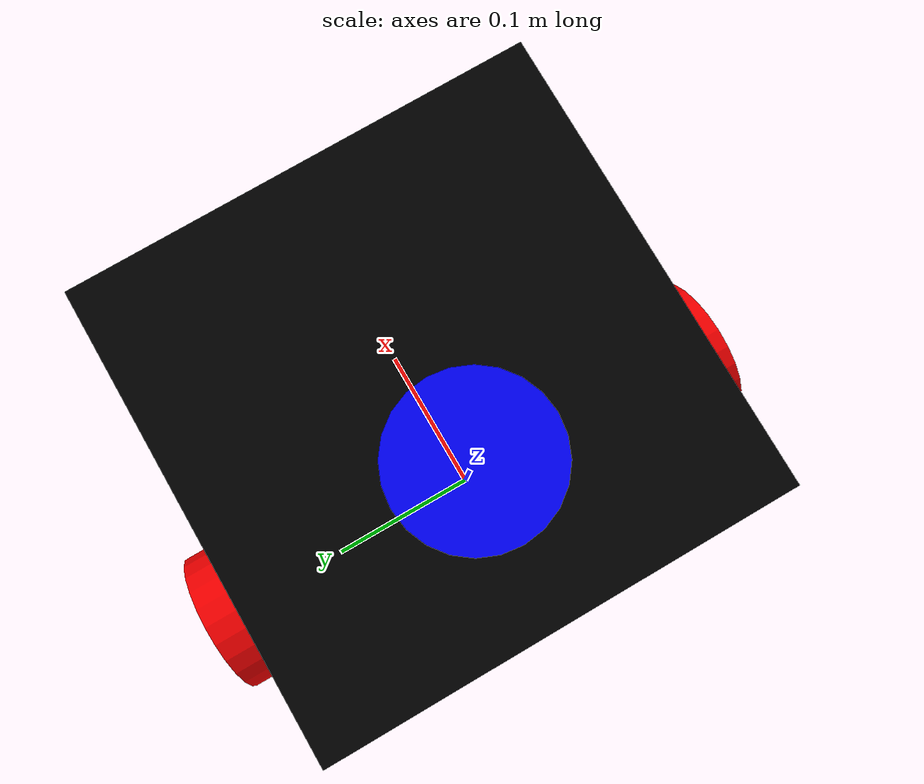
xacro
<?xml version="1.0"?>
<robot xmlns:xacro="http://www.ros.org/wiki/xacro"  name="robot">

    <xacro:include filename="robot_core.xacro"/>

    <xacro:include filename="gazebo_control.xacro"/>

    <xacro:include filename="lidar.xacro"/>

    <xacro:include filename="depth_camera.xacro"/>

</robot>

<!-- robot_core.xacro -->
<robot xmlns:xacro="http://www.ros.org/wiki/xacro">

    <xacro:include filename="inertial_macros.xacro"/>

    <material name="white">
        <color rgba="1 1 1 1" />
    </material>

    <material name="red">
        <color rgba="1 0 0 1" />
    </material>

    <material name="orange">
        <color rgba="1 0.3 0.1 1" />
    </material>

    <material name="black">
        <color rgba="0 0 0 1" />
    </material>

    <material name="blue">
        <color rgba="0 0 1 1" />
    </material>

    <material name="green">
        <color rgba="0 1 0 1" />
    </material>

    <!-- BASE LINK -->

    <link name="base_link">
    </link>

    <!-- BASE_FOOTPRINT LINK -->

    <joint name="base_footprint_joint" type="fixed">
        <parent link="base_link"/>
        <child link="base_footprint"/>
        <origin xyz="0 0 0" rpy="0 0 0"/>
    </joint>

    <link name="base_footprint">
    </link>

    <!-- CHASSIS LINK -->

    <joint name="chassis_joint" type="fixed">
        <parent link="base_link"/>
        <child link="chassis"/>
        <origin xyz="-0.1 0 0"/>
    </joint>

    <link name="chassis">
        <visual>
            <origin xyz="0.15 0 0.075"/>
            <geometry>
                <box size="0.3 0.3 0.15"/>
            </geometry>
            <material name="black"/>
        </visual>
        <collision>
            <origin xyz="0.15 0 0.075"/>
            <geometry>
                <box size="0.3 0.3 0.15"/>
            </geometry>
        </collision>
        <xacro:inertial_box mass="0.5" x="0.3" y="0.3" z="0.15">
            <origin xyz="0.15 0 0.075" rpy="0 0 0"/>
        </xacro:inertial_box>
    </link>

    <gazebo reference="chassis">
        <material>Gazebo/Black</material>
    </gazebo>

    <!-- LEFT WHEEL LINK-->

    <joint name="l_wheel_joint" type="continuous">
        <parent link="base_link"/>
        <child link="l_wheel"/>
        <origin xyz="0 0.175 0" rpy = "-${pi/2} 0 0"/>
        <axis xyz = "0 0 1"/>
    </joint>

    <link name="l_wheel">
        <visual>
            <geometry>
                <cylinder radius="0.05" length="0.04"/>
            </geometry>
            <material name="red"/>
        </visual>

        <collision>
            <geometry>
                <cylinder radius="0.05" length="0.04"/>
            </geometry>
        </collision>
        <xacro:inertial_cylinder mass="0.1" length="0.04" radius="0.05">
            <origin xyz="0 0 0" rpy="0 0 0"/>
        </xacro:inertial_cylinder>
    </link>

    <gazebo reference="l_wheel">
        <material>Gazebo/Red</material>
    </gazebo>

    <!-- RIGHT WHEEL LINK-->

    <joint name="r_wheel_joint" type="continuous">
        <parent link="base_link"/>
        <child link="r_wheel"/>
        <origin xyz="0 -0.175 0" rpy="${pi/2} 0 0"/>
        <axis xyz = "0 0 -1"/>
    </joint>

    <link name="r_wheel">
        <visual>
            <geometry>
                <cylinder radius="0.05" length="0.04"/>
            </geometry>
            <material name="red"/>
        </visual>

        <collision>
            <geometry>
                <cylinder radius="0.05" length="0.04"/>
            </geometry>
        </collision>
        <xacro:inertial_cylinder mass="0.1" length="0.04" radius="0.05">
            <origin xyz="0 0 0" rpy="0 0 0"/>
        </xacro:inertial_cylinder>
    </link>

    <gazebo reference="r_wheel">
        <material>Gazebo/Red</material>
    </gazebo>

    <!-- CASTER WHEEL LINK -->

    <joint name="c_wheel_joint" type="fixed">
        <parent link="chassis"/>
        <child link="c_wheel"/>
        <origin xyz="0.25 0 0"/>
    </joint>

    <link name="c_wheel">
        <visual>
            <geometry>
                <sphere radius="0.05"/>
            </geometry>
            <material name="orange"/>
        </visual>

        <collision>
            <geometry>
                <sphere radius="0.05"/>
            </geometry>
        </collision>
        <xacro:inertial_sphere mass="0.1" radius="0.05">
            <origin xyz="0 0 0" rpy ="0 0 0"/>
        </xacro:inertial_sphere>
    </link>

    <gazebo reference="c_wheel">
        <material>Gazebo/Orange</material>
        <mu1 value="0.0001"/>
        <mu2 value="0.0001"/>
    </gazebo>

</robot>

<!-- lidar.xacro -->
<robot xmlns:xacro="http://www.ros.org/wiki/xacro">

    <joint name="laser_joint" type= "fixed">
        <parent link="chassis"/>
        <child link="laser_frame"/>

        <origin xyz="0.1 0 0.165" rpy="0 0 0"/>
    </joint>

    <link name="laser_frame">
        <visual>
            <geometry>
                <cylinder radius="0.05" length="0.04"/>
            </geometry>
            <material name="blue"/>
        </visual>

        <collision>
            <geometry>
                <cylinder radius="0.05" length="0.04"/>
            </geometry>
        </collision>
        <xacro:inertial_cylinder mass="0.1" length="0.04" radius="0.05">
            <origin xyz="0 0 0" rpy="0 0 0"/>
        </xacro:inertial_cylinder>
    </link>

    <gazebo reference="laser_frame">
        <material>Gazebo/Blue</material>

        <sensor name="laser" type="ray">
            <pose> 0 0 0 0 0 0 </pose>
            <visualize>true</visualize>
            <update_rate>100</update_rate>
            <ray>
                <scan>
                    <horizontal>
                        <samples>360</samples>
                        <min_angle>-3.14</min_angle>
                        <max_angle>3.14</max_angle>
                    </horizontal>
                </scan>
                <range>
                    <min>0.3</min>
                    <max>12</max>
                </range>
            </ray>
            <plugin name="laser_controller" filename="libgazebo_ros_ray_sensor.so">
                <ros>
                    <argument>~/out:=scan</argument>
                </ros>
                <output_type>sensor_msgs/LaserScan</output_type>
                <frame_name>laser_frame</frame_name>
            </plugin>
        </sensor>
    </gazebo>

</robot>

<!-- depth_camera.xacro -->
<robot xmlns:xacro="http://www.ros.org/wiki/xacro">

    <joint name="camera_joint" type= "fixed">
        <parent link="chassis"/>
        <child link="camera_link"/>

        <origin xyz="0.305 0 0.08" rpy="0 0 0"/>
    </joint>

    <link name="camera_link">
        <visual>
            <geometry>
                <box size="0.01 0.03 0.03"/>
            </geometry>
            <material name="green"/>
        </visual>
    </link>

    <!--Extra linking for orientation compensation-->

    <joint name="camera_optical_joint" type= "fixed">
        <parent link="camera_link"/>
        <child link="camera_link_optical"/>

        <origin xyz="0 0 0" rpy="${-pi/2} 0 ${-pi/2}"/>
    </joint>

    <link name="camera_link_optical"></link>

    <gazebo reference="camera_link">
        <material>Gazebo/Green</material>

        <sensor name="camera" type="depth">
            <pose> 0 0 0 0 0 0 </pose>
            <visualize>true</visualize>
            <update_rate>10</update_rate>
            <camera>
                <horizontal_fov>1.089</horizontal_fov>
                <image>
                    <format>B8G8R8</format>
                    <width>640</width>
                    <height>480</height>
                </image>
                <clip>
                    <near>0.05</near>
                    <far>8.0</far>
                </clip>
            </camera>

            <plugin name="camera_controller" filename="libgazebo_ros_camera.so">

                <frame_name>camera_link_optical</frame_name>

                <min_depth>0.1</min_depth>
                <max_depth>100</max_depth>
            </plugin>
        </sensor>
    </gazebo>

</robot>
